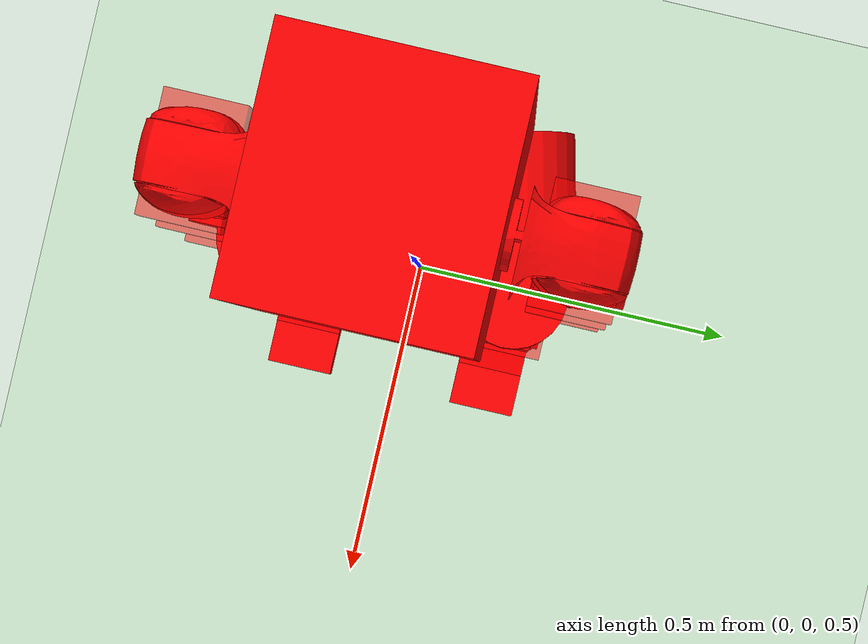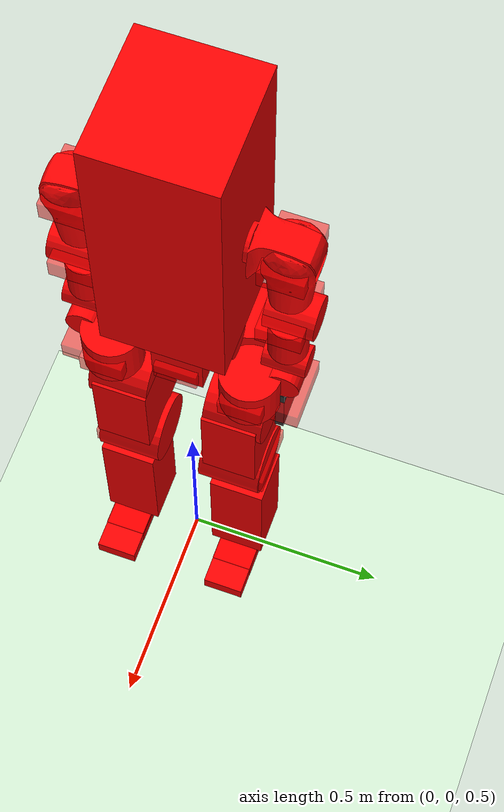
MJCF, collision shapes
<mujoco model="igris_v_1_2">
  <compiler angle="radian" meshdir="meshes/igris_v1_2_parallel/" balanceinertia="false" autolimits="true"/>
  <include file="../common/scene.xml"/>
  <include file="../common/mimic_sites.xml"/>

  <size njmax="8000" nconmax="4000" />
  <option timestep='0.001' iterations="50" tolerance="1e-5" solver="Newton" jacobian="dense" cone="elliptic" noslip_iterations="30" noslip_tolerance="1e-5"/>

  <default>
    <motor ctrllimited="true" />

    <default class="visual">
      <geom group="1" type="mesh" contype="0" conaffinity="0" density="0" rgba="1 1 1 1"/>
    </default>

    <default class="collision">
      <geom group="2" rgba="1.0 0.0 0.0 0.5"/>
    </default>

    <default class="TBM2G_11526_SHF_32">
        <joint damping="8" frictionloss="6" limited="true" armature="0.341155"/>
        <motor ctrlrange="-449.5 449.5"/>
    </default>

    <default class="TBM2G_09408_SHF_25">
        <joint damping="7"  frictionloss="5" limited="true" armature="0.0827421"/>
        <motor ctrlrange="-121.52 121.52" />
    </default>

    <default class="TBM2G_07613_SHF_25">
        <joint damping="7"  frictionloss="4" limited="true" armature="0.0553536"/>
        <motor ctrlrange="-106.02 106.02" />
    </default>

    <default class="TBM2G_07613_SHF_20">
        <joint damping="6"  frictionloss="3" limited="true" armature="0.0553536"/>
        <motor ctrlrange="-106.02 106.02" />
    </default>

    <default class="TBM2G_06013_SHF_20">
        <joint damping="6"  frictionloss="2" limited="true" armature="0.0141267"/>
        <motor ctrlrange="-51.77 51.77" />
    </default>

    <default class="TBM2G_06013_SHF_17">
        <joint damping="5"  frictionloss="1" limited="true" armature="0.0141267"/>
        <motor ctrlrange="-51.77 51.77"/>
    </default>

    <default class="TBM2G_05008_SHF_14">
        <joint damping="4"  frictionloss="0.5" limited="true" armature="0.0075919"/>
        <motor ctrlrange="-22.32 22.32"/>
    </default>

    <default class="TBM2G_05008_CSF_11">
        <joint damping="3"  frictionloss="0.3" limited="true" armature="0.0075919"/>
        <motor ctrlrange="-22.32 22.32"/>
    </default>

    <default class="Passive">
        <joint damping="0.01"  frictionloss="0" limited="false" armature="0"/>
    </default>
  </default>

  <asset>
    <mesh name="2_0_0_Pelvis_Leg" file="2_0_0_Pelvis_Leg.stl" scale="0.001 0.001 0.001"/>
    <mesh name="3_1_Waist_parallel" file="3_1_Waist_parallel_v2.stl" scale="0.001 0.001 0.001"/>
    <mesh name="3_1_1_Bracket_Left_Waist" file="3_1_1_Bracket_Left_Waist.stl" scale="0.001 0.001 0.001"/>
    <mesh name="3_1_2_Rod_Left_Waist" file="3_1_2_Rod_Left_Waist.stl" scale="0.001 0.001 0.001"/>
    <mesh name="3_1_3_Bracket_Right_Waist" file="3_1_3_Bracket_Right_Waist.stl" scale="0.001 0.001 0.001"/>
    <mesh name="3_1_4_Rod_Right_Waist" file="3_1_4_Rod_Right_Waist.stl" scale="0.001 0.001 0.001"/>

    <mesh name="3_2_Link_cross_Torso_Body" file="3_2_Link_cross_Torso_Body.stl" scale="0.001 0.001 0.001"/>
    <mesh name="3_3_Torso" file="3_3_Torso.stl" scale="0.001 0.001 0.001"/>

    <mesh name="1_1_1_Shoulder_Pitch_Left_Arm" file="1_1_1_Shoulder_Pitch_Left_Arm.stl" scale="0.001 0.001 0.001"/>
    <mesh name="1_1_2_Shoulder_Roll_Left_Arm" file="1_1_2_Shoulder_Roll_Left_Arm.stl" scale="0.001 0.001 0.001"/>
    <mesh name="1_1_3_Shoulder_Yaw_Left_Arm" file="1_1_3_Shoulder_Yaw_Left_Arm.stl" scale="0.001 0.001 0.001"/>
    <mesh name="1_1_4_Elbow_Left_Arm" file="1_1_4_Elbow_Left_Arm.stl" scale="0.001 0.001 0.001"/>
    <mesh name="1_1_5_Wrist_Yaw_Left_Arm" file="1_1_5_Wrist_Yaw_Left_Arm.stl" scale="0.001 0.001 0.001"/>
    <mesh name="1_1_6_Wrist_Pitch_Left_Arm" file="1_1_6_Wrist_Pitch_Left_Arm.stl" scale="0.001 0.001 0.001"/>
    <mesh name="1_1_7_Wrist_Roll_Left_Arm" file="1_1_7_Wrist_Roll_Left_Arm.stl" scale="0.001 0.001 0.001"/>

    <mesh name="1_2_1_Shoulder_Pitch_Right_Arm" file="1_2_1_Shoulder_Pitch_Right_Arm.stl" scale="0.001 0.001 0.001"/>
    <mesh name="1_2_2_Shoulder_Roll_Right_Arm" file="1_2_2_Shoulder_Roll_Right_Arm.stl" scale="0.001 0.001 0.001"/>
    <mesh name="1_2_3_Shoulder_Yaw_Right_Arm" file="1_2_3_Shoulder_Yaw_Right_Arm.stl" scale="0.001 0.001 0.001"/>
    <mesh name="1_2_4_Elbow_Right_Arm" file="1_2_4_Elbow_Right_Arm.stl" scale="0.001 0.001 0.001"/>
    <mesh name="1_2_5_Wrist_Yaw_Right_Arm" file="1_2_5_Wrist_Yaw_Right_Arm.stl" scale="0.001 0.001 0.001"/>
    <mesh name="1_2_6_Wrist_Pitch_Right_Arm" file="1_2_6_Wrist_Pitch_Right_Arm.stl" scale="0.001 0.001 0.001"/>
    <mesh name="1_2_7_Wrist_Roll_Right_Arm" file="1_2_7_Wrist_Roll_Right_Arm.stl" scale="0.001 0.001 0.001"/>

    <mesh name="2_1_1_Hip_Roll_Left_Leg" file="2_1_1_Hip_Roll_Left_Leg.stl" scale="0.001 0.001 0.001"/>
    <mesh name="2_1_2_Hip_Yaw_Left_Leg" file="2_1_2_Hip_Yaw_Left_Leg.stl" scale="0.001 0.001 0.001"/>
    <mesh name="2_1_3_Thigh_Left_Leg" file="2_1_3_Thigh_Left_Leg.stl" scale="0.001 0.001 0.001"/>
    <mesh name="2_1_4_Shin_Left_Leg" file="2_1_4_Shin_Left_Leg_v2.stl" scale="0.001 0.001 0.001"/>
    <mesh name="2_1_4_1_Bracket_Out_Left_Ankle" file="2_1_4_1_Bracket_Out_Left_Ankle.stl" scale="0.001 0.001 0.001"/>
    <mesh name="2_1_4_2_Bracket_In_Left_Ankle" file="2_1_4_2_Bracket_In_Left_Ankle.stl" scale="0.001 0.001 0.001"/>
    <mesh name="2_1_5_Shaft_Foot_Left_Leg" file="2_1_5_Shaft_Foot_Left_Leg.stl" scale="0.001 0.001 0.001"/>
    <mesh name="2_1_6_Foot_Left_Leg" file="2_1_6_Foot_Left_Leg_v2.stl" scale="0.001 0.001 0.001"/>
    <mesh name="2_1_6_1_Uni_Out_Left_Foot" file="2_1_6_1_Uni_Out_Left_Foot.stl" scale="0.001 0.001 0.001"/>
    <mesh name="2_1_6_2_Link_Long_Left_Foot" file="2_1_6_2_Link_Long_Left_Foot.stl" scale="0.001 0.001 0.001"/>
    <mesh name="2_1_6_3_Uni_In_Left_Foot" file="2_1_6_3_Uni_In_Left_Foot.stl" scale="0.001 0.001 0.001"/>
    <mesh name="2_1_6_4_Link_Short_Left_Foot" file="2_1_6_4_Link_Short_Left_Foot.stl" scale="0.001 0.001 0.001"/>

    <mesh name="2_2_1_Hip_Roll_Right_Leg" file="2_2_1_Hip_Roll_Right_Leg.stl" scale="0.001 0.001 0.001"/>
    <mesh name="2_2_2_Hip_Yaw_Right_Leg" file="2_2_2_Hip_Yaw_Right_Leg.stl" scale="0.001 0.001 0.001"/>
    <mesh name="2_2_3_Thigh_Right_Leg" file="2_2_3_Thigh_Right_Leg.stl" scale="0.001 0.001 0.001"/>
    <mesh name="2_2_4_Shin_Right_Leg" file="2_2_4_Shin_Right_Leg_v2.stl" scale="0.001 0.001 0.001"/>
    <mesh name="2_2_4_1_Bracket_Out_Right_Ankle" file="2_2_4_1_Bracket_Out_Right_Ankle.stl" scale="0.001 0.001 0.001"/>
    <mesh name="2_2_4_2_Bracket_In_Right_Ankle" file="2_2_4_2_Bracket_In_Right_Ankle.stl" scale="0.001 0.001 0.001"/>
    <mesh name="2_2_5_Shaft_Foot_Right_Leg" file="2_2_5_Shaft_Foot_Right_Leg.stl" scale="0.001 0.001 0.001"/>
    <mesh name="2_2_6_Foot_Right_Leg" file="2_2_6_Foot_Right_Leg_v2.stl" scale="0.001 0.001 0.001"/>
    <mesh name="2_2_6_1_Uni_Out_Right_Foot" file="2_2_6_1_Uni_Out_Right_Foot.stl" scale="0.001 0.001 0.001"/>
    <mesh name="2_2_6_2_Link_Long_Right_Foot" file="2_2_6_2_Link_Long_Right_Foot.stl" scale="0.001 0.001 0.001"/>
    <mesh name="2_2_6_3_Uni_In_Right_Foot" file="2_2_6_3_Uni_In_Right_Foot.stl" scale="0.001 0.001 0.001"/>
    <mesh name="2_2_6_4_Link_Short_Right_Foot" file="2_2_6_4_Link_Short_Right_Foot.stl" scale="0.001 0.001 0.001"/>

    <texture type="skybox" builtin="gradient" width="128" height="128" rgb1="1.0 1.0 1.0" rgb2="0.4 0.4 0.4"/>
    <texture name="grid" type="2d" builtin="checker" width="512" height="512" rgb1="0.9 0.9 0.9" rgb2=".85 .85 .85"/>
    <material name="grid" texture="grid" texrepeat="1 1" texuniform="true" reflectance=".2"/>
  </asset>

  <worldbody>

    <body name="base_link" pos="0 0 1.5">
      <site name = "base_link_site" pos="0 0 0" size="0.01"/>
      <site name="pelvis_mimic" class="mimic"/>
      <inertial pos="-0.18845 -0.00001 -0.05084" mass="17.287" fullinertia="0.2612 0.06098 0.2811 -0.00001 -0.00432 0.00001"/>
      <joint name="root" type="free" limited="false" actuatorfrclimited="false"/>
      <geom class="visual" type="mesh" rgba="0.0706 0.0706 0.0706 1.0" mesh="2_0_0_Pelvis_Leg"/>
      <geom class="collision" type="cylinder" size="0.085 0.07" pos="-0.10 0.126 0.0" quat="0.7020326 -0.0845593 0.7020326 0.0845593"/>
      <geom class="collision" type="cylinder" size="0.085 0.07" pos="-0.10 -0.126 0.0" quat="0.7020326 0.0845593 0.7020326 -0.0845593"/>
      <geom class="collision" type="box" size="0.11 0.06 0.06" pos="-0.05 0.0 0.02"/>
      <body name="2_1_1_Hip_Roll_Left_Leg" pos="-0.04791 0.14153 -0.00520" quat="0.992824 0 0 0.119582">
        <inertial pos="0.07451 -0.00119 -0.00059" mass="3.265" fullinertia="0.00507 0.00646 0.00767 -0.00003 0.00008 -0.00007"/>
        <joint name="Joint_2_1_1_Hip_Roll_Left_Leg" class="TBM2G_11526_SHF_32" pos="0 0 0" axis="1 0 0" range="-0.349066 1.5708"/>
        <geom class="visual" type="mesh" rgba="0.23 0.25 0.23 1" mesh="2_1_1_Hip_Roll_Left_Leg"/>
        <geom class="collision" type="cylinder" size="0.07 0.06" pos="0.0855 0.0 0.0" euler="0.0 0.0 0.0"/>
        <body name="2_1_2_Hip_Yaw_Left_Leg" pos="0.0855 0.0 0.0" quat="0.992824 0 0 -0.119582">
          <site name="left_hip_mimic" class="mimic"/>
          <inertial pos="-0.02491 -0.03014 -0.13229" mass="6.765" fullinertia="0.01696 0.01963 0.0158 -0.00002 -0.00051 -0.00073"/>
          <joint name="Joint_2_1_2_Hip_Yaw_Left_Leg" class="TBM2G_09408_SHF_25" pos="0 0 0" axis="0 0 1" range="-1.5708 1.5708"/>
          <geom class="visual" type="mesh" rgba="0.23 0.25 0.23 1" mesh="2_1_2_Hip_Yaw_Left_Leg"/>
          <geom class="collision" type="cylinder" size="0.085 0.07" pos="-0.025 -0.0245 -0.13638" euler="1.5708 0.0 0.0"/>
          <body name="2_1_3_Thigh_Left_Leg" pos="-0.025 0.0 -0.13638">
            <inertial pos="-0.00066 0.03383 -0.26689" mass="7.305" fullinertia="0.05244 0.0545 0.01786 -0.00017 0.00076 0.00751"/>
            <joint name="Joint_2_1_3_Hip_Pitch_Left_Leg" class="TBM2G_11526_SHF_32" pos="0 0 0" axis="0 1 0" range="-2.0944 0.5236"/>
            <geom class="visual" type="mesh" rgba="0.23 0.25 0.23 1" mesh="2_1_3_Thigh_Left_Leg"/>
            <geom class="collision" type="cylinder" size="0.085 0.075" pos="0.0 -0.035 -0.29" euler="1.5708 0.0 0.0"/>
            <geom class="collision" type="box" size="0.09 0.065 0.12" pos="0.0 -0.03 -0.1"/>
            <body name="2_1_4_Shin_Left_Leg" pos="0.0 0.0 -0.29">
              <site name="left_knee_mimic" class="mimic"/>
              <inertial pos="0.00942 -0.01272 -0.21127" mass="5.128" fullinertia="0.06522 0.06602 0.00746 0.00023 0.00165 -0.00716"/>
              <joint name="Joint_2_1_4_Knee_Left_Leg" class="TBM2G_11526_SHF_32" pos="0 0 0" axis="0 1 0" range="0 2.44346"/>
              <geom class="visual" type="mesh" rgba="0.23 0.25 0.23 1" mesh="2_1_4_Shin_Left_Leg"/>
              <geom class="collision" type="box" size="0.065 0.067 0.17" pos="0.005 -0.02 -0.26"/>
              <body name="2_1_5_Shaft_Foot_Left_Leg" pos="0.02 -0.02 -0.41">
                <inertial pos="-0.01629 0 -0.00941" mass="0.133" fullinertia="0.00004 0.00012 0.00008 0 -0.00004 0"/>
                <joint name="Joint_2_1_5_Ankle_Pitch_Left_Leg" class="TBM2G_06013_SHF_20" pos="0 0 0" axis="0 1 0" limited="true" range="-0.261799388 0.698131701"/>
                <geom class="visual" type="mesh" rgba="0.23 0.25 0.23 1" mesh="2_1_5_Shaft_Foot_Left_Leg"/>
                <body name="2_1_6_Foot_Left_Leg" pos="0 0 0">
                  <site name="left_foot_mimic" class="mimic" pos="0.03 0.005 -0.05"/>
                  <inertial pos="-0.01133 0.00174 -0.04348" mass="0.611" fullinertia="0.00040 0.00356 0.00380 -0.00007 0.00028 0.00001"/>
                  <joint name="Joint_2_1_6_Ankle_Roll_Left_Leg" class="TBM2G_06013_SHF_20" pos="0 0 0" axis="0.8660254038 0 0.5" limited="true" range="-0.523598776 0.523598776"/>
                  <geom class="visual" type="mesh" rgba="0.23 0.25 0.23 1" mesh="2_1_6_Foot_Left_Leg"/>
                  <geom class="collision" name="left_foot" type="box" size="0.14 0.05 0.02" pos="0.03 0.005 -0.05"/>
                </body>
              </body>
            </body>
          </body>
        </body>
      </body>
      <body name="2_2_1_Hip_Roll_Right_Leg" pos="-0.04791 -0.14153 -0.00520" quat="0.992824 0 0 -0.119582">
        <inertial pos="0.07451 0.00119 -0.00059" mass="3.265" fullinertia="0.00507 0.00645 0.00767 0.00003 0.00008 0.00007"/>
        <joint name="Joint_2_2_1_Hip_Roll_Right_Leg" class="TBM2G_11526_SHF_32" pos="0 0 0" axis="1 0 0" range="-1.5708 0.349066"/>
        <geom class="visual" type="mesh" rgba="0.23 0.25 0.23 1" mesh="2_2_1_Hip_Roll_Right_Leg"/>
        <geom class="collision" type="cylinder" size="0.07 0.06" pos="0.0855 0.0 0.0" euler="0.0 0.0 0.0"/>
        <body name="2_2_2_Hip_Yaw_Right_Leg" pos="0.0855 0.0 0.0" quat="0.992824 0 0 0.119582">
          <site name="right_hip_mimic" class="mimic"/>
          <inertial pos="-0.02492 0.03014 -0.13229" mass="6.765" fullinertia="0.01696 0.01964 0.01581 0.00002 -0.00051 0.00073"/>
          <joint name="Joint_2_2_2_Hip_Yaw_Right_Leg" class="TBM2G_09408_SHF_25" pos="0 0 0" axis="0 0 1" range="-1.5708 1.5708"/>
          <geom class="visual" type="mesh" rgba="0.23 0.25 0.23 1" mesh="2_2_2_Hip_Yaw_Right_Leg"/>
          <geom class="collision" type="cylinder" size="0.085 0.07" pos="-0.025 0.0245 -0.13638" euler="1.5708 0.0 0.0"/>
          <body name="2_2_3_Thigh_Right_Leg" pos="-0.025 0.0 -0.13638">
            <inertial pos="-0.00065 0.03383 -0.26688" mass="7.305" fullinertia="0.05245 0.05451 0.01786 0.00017 0.00076 -0.00751"/>
            <joint name="Joint_2_2_3_Hip_Pitch_Right_Leg" class="TBM2G_11526_SHF_32" pos="0 0 0" axis="0 1 0" range="-2.0944 0.5236"/>
            <geom class="visual" type="mesh" rgba="0.23 0.25 0.23 1" mesh="2_2_3_Thigh_Right_Leg"/>
            <geom class="collision" type="cylinder" size="0.085 0.075" pos="0.0 0.035 -0.29" euler="1.5708 0.0 0.0"/>
            <geom class="collision" type="box" size="0.09 0.065 0.12" pos="0.0 0.03 -0.1"/>
            <body name="2_2_4_Shin_Right_Leg" pos="0 0 -0.29">
              <site name="right_knee_mimic" class="mimic"/>
              <inertial pos="0.00937 0.01272 -0.21127" mass="5.128" fullinertia="0.06522 0.06601 0.00746 -0.00022 0.00167 0.00717"/>
              <joint name="Joint_2_2_4_Knee_Right_Leg" class="TBM2G_11526_SHF_32" pos="0 0 0" axis="0 1 0" range="0 2.44346"/>
              <geom class="visual" type="mesh" rgba="0.23 0.25 0.23 1" mesh="2_2_4_Shin_Right_Leg"/>
              <geom class="collision" type="box" size="0.065 0.067 0.17" pos="0.005 0.02 -0.26"/>
              <body name="2_2_5_Shaft_Foot_Right_Leg" pos="0.02 0.02 -0.41">
                <inertial pos="-0.01629 0.00000 -0.00941" mass="0.133" fullinertia="0.00004 0.00012 0.00008 0 -0.00004 0"/>
                <joint name="Joint_2_2_5_Ankle_Pitch_Right_Leg" class="TBM2G_06013_SHF_20" pos="0 0 0" axis="0 1 0" limited="true" range="-0.261799388 0.698131701"/>
                <geom class="visual" type="mesh" rgba="0.23 0.25 0.23 1" mesh="2_2_5_Shaft_Foot_Right_Leg"/>
                <body name="2_2_6_Foot_Right_Leg" pos="0 0 0">
                  <site name="right_foot_mimic" class="mimic" pos="0.03 -0.005 -0.05"/>
                  <inertial pos="-0.01132 -0.00174 -0.04348" mass="0.611" fullinertia="0.00040 0.00355 0.00380 0.00007 0.00028 -0.00001"/>
                  <joint name="Joint_2_2_6_Ankle_Roll_Right_Leg" class="TBM2G_06013_SHF_20" pos="0 0 0" axis="0.8660254038 0 0.5" limited="true" range="-0.523598776 0.523598776"/>
                  <geom class="visual" type="mesh" rgba="0.23 0.25 0.23 1" mesh="2_2_6_Foot_Right_Leg"/>
                  <geom class="collision" name="right_foot" type="box" size="0.14 0.05 0.02" pos="0.03 -0.005 -0.05"/>
                </body>
              </body>
            </body>
          </body>
        </body>
      </body>
      <body name="3_1_Waist_parallel" pos="0 0 0">
        <site name = "waist_yaw_link_site" pos="0 0 0.0848" euler="0.0 3.14159 0.0" size="0.01"/>
        <inertial pos="0.00861 -0.00002 0.13089" mass="6.940" fullinertia="0.06132 0.01452 0.05953 0 -0.00052 0"/>
        <joint name="Joint_3_1_Waist_Yaw" class="TBM2G_09408_SHF_25" pos="0 0 0" axis="0 0 1" range="-1.5708 1.5708"/>
        <geom class="visual" type="mesh" rgba="0.23 0.25 0.23 1" mesh="3_1_Waist_parallel"/>
        <geom class="collision" type="mesh" mesh="3_1_Waist_parallel"/>
        <body name="3_2_Link_cross_Torso_Body" pos="0.01 0 0.1373">
          <inertial pos="-0.00615 0.00000 0.03645" mass="0.486" fullinertia="0.00067 0.00132 0.00083 0 0.00007 0"/>
          <joint name="Joint_3_2_Waist_Pitch" class="TBM2G_09408_SHF_25" pos="0 0 0" axis="0 1 0" range="-0.436332 0.785398"/>
          <geom class="visual" type="mesh" rgba="0.23 0.25 0.23 1" mesh="3_2_Link_cross_Torso_Body"/>
          <body name="3_3_Torso" pos="-0.01 0 0.07">
            <site name="upper_body_mimic" class="mimic" pos="0.0 0.0 0.3"/>
            <site name="head_mimic" class="mimic" pos="0.0 0.0 0.6"/>
            <inertial pos="-0.07803 0.00140 0.38060" mass="22.745" fullinertia="0.56760 0.50790 0.23140 0.00022 0.01508 -0.00218"/>
            <joint name="Joint_3_3_Waist_Roll" class="TBM2G_09408_SHF_25" pos="0 0 0" axis="1 0 0" range="-0.523599 0.523599"/>
            <geom class="visual" type="mesh" rgba="0.2 0.2 0.2 1" mesh="3_3_Torso"/>
            <geom class="collision" type="box" size="0.15 0.14 0.35" pos="-0.02 0.0 0.35"/>
            <body name="1_1_1_Shoulder_Pitch_Left_Arm" pos="-0.02 0.23 0.31">
              <inertial pos="0.00720 0.18178 0.00155" mass="2.089" fullinertia="0.00382 0.00234 0.00355 -0.00018 0.00001 0.00004"/>
              <joint name="Joint_1_1_1_Shoulder_Pitch_Left_Arm" class="TBM2G_07613_SHF_25" pos="0 0 0" axis="0 1 0" range="-3.14159 1.0472"/>
              <geom class="visual" type="mesh" rgba="0.2 0.2 0.2 1" mesh="1_1_1_Shoulder_Pitch_Left_Arm"/>
              <geom class="collision" type="mesh" mesh="1_1_1_Shoulder_Pitch_Left_Arm"/>
              <body name="1_1_2_Shoulder_Roll_Left_Arm" pos="0 0 0">
                <site name="left_shoulder_mimic" class="mimic"/>
                <inertial pos="0.00153 0.00207 -0.04745" mass="0.435" fullinertia="0.00120 0.00163 0.00095 0 -0.00005 -0.00001"/>
                <joint name="Joint_1_1_2_Shoulder_Roll_Left_Arm" class="TBM2G_07613_SHF_20" pos="0 0 0" axis="1 0 0" range="-0.261799 1.5708"/>
                <geom class="visual" type="mesh" rgba="0.2 0.2 0.2 1" mesh="1_1_2_Shoulder_Roll_Left_Arm"/>
                <geom class="collision" type="mesh" mesh="1_1_2_Shoulder_Roll_Left_Arm"/>
                <body name="1_1_3_Shoulder_Yaw_Left_Arm" pos="-0.001 0 -0.0805">
                  <inertial pos="0.00260 0.00558 -0.09321" mass="2.976" fullinertia="0.01220 0.01203 0.00239 -0.00004 0.00039 0.00085"/>
                  <joint name="Joint_1_1_3_Shoulder_Yaw_Left_Arm" class="TBM2G_06013_SHF_17" pos="0 0 0" axis="0 0 1" range="-1.5708 1.5708"/>
                  <geom class="visual" type="mesh" rgba="0.23 0.25 0.23 1" mesh="1_1_3_Shoulder_Yaw_Left_Arm"/>
                  <geom class="collision" type="cylinder" size="0.05 0.056" pos="0.0 0.01 -0.14603" euler="1.5708 0.0 0.0"/>
                  <body name="1_1_4_Elbow_Left_Arm" pos="0.004 0 -0.14603">
                    <site name="left_elbow_mimic" class="mimic"/>
                    <inertial pos="0.00046 0.00970 -0.03842" mass="0.224" fullinertia="0.00043 0.00025 0.00032 0 0 -0.00008"/>
                    <joint name="Joint_1_1_4_Elbow_Left_Arm" class="TBM2G_06013_SHF_17" pos="0 0 0" axis="0 1 0" range="-2.35619 0"/>
                    <geom class="visual" type="mesh" rgba="0.23 0.25 0.23 1" mesh="1_1_4_Elbow_Left_Arm"/>
                    <geom class="collision" type="cylinder" size="0.045 0.058" pos="0 0 -0.102" euler="0.0 0.0 0.0"/>
                    <body name="1_1_5_Wrist_Yaw_Left_Arm" pos="0 0.00125 -0.071">
                      <inertial pos="0.00110 -0.00127 -0.06309" mass="1.555" fullinertia="0.00446 0.00433 0.00094 0 0.00010 -0.00013"/>
                      <joint name="Joint_1_1_5_Wrist_Yaw_Left_Arm" class="TBM2G_05008_SHF_14" pos="0 0 0" axis="0 0 1" range="-1.5708 1.5708"/>
                      <geom class="visual" type="mesh" rgba="0.23 0.25 0.23 1" mesh="1_1_5_Wrist_Yaw_Left_Arm"/>
                      <geom class="collision" type="cylinder" size="0.037 0.05" pos="0.002 0.0 -0.125" euler="1.5708 0.0 0.0"/>
                      <body name="1_1_6_Wrist_Pitch_Left_Arm" pos="-0.0029 0 -0.1966">
                        <inertial pos="-0.00424 -0.00001 0.00050" mass="0.456" fullinertia="0.00017 0.00022 0.00023 0 -0.00001 0"/>
                        <joint name="Joint_1_1_6_Wrist_Pitch_Left_Arm" class="TBM2G_05008_CSF_11" pos="0 0 0" axis="0 1 0" range="-0.523599 0.523599"/>
                        <geom class="visual" type="mesh" rgba="0.23 0.25 0.23 1" mesh="1_1_6_Wrist_Pitch_Left_Arm"/>
                        <geom class="collision" type="cylinder" size="0.042 0.05" pos="0 0 0" euler="0.0 1.5708 0.0"/>
                        <body name="1_1_7_Wrist_Roll_Left_Arm" pos="0 -0.00065 0">
                          <site name="left_hand_mimic" class="mimic" pos="0.0 0.0 -0.10"/>
                          <inertial pos="-0.00074 0 -0.02505" mass="0.215" fullinertia="0.00011 0.00025 0.00019 0 0 0"/>
                          <joint name="Joint_1_1_7_Wrist_Roll_Left_Arm" class="TBM2G_05008_CSF_11" pos="0 0 0" axis="1 0 0" range="-1.5708 1.0472"/>
                          <geom class="visual" type="mesh" rgba="0.23 0.25 0.23 1" mesh="1_1_7_Wrist_Roll_Left_Arm"/>
                          <geom class="visual" type="box" rgba="0.2 0.2 0.2 1" size="0.05 0.01 0.075" pos="0 0 -0.12"/>
                          <geom class="collision" type="box" size="0.05 0.01 0.075" pos="0 0 -0.12"/>
                        </body>
                      </body>
                    </body>
                  </body>
                </body>
              </body>
            </body>
            <body name="1_2_1_Shoulder_Pitch_Right_Arm" pos="-0.02 -0.23 0.31">
              <inertial pos="0.00720 -0.18179 0.00154" mass="2.089" fullinertia="0.00382 0.00234 0.00355 0.00017 0.00001 -0.00004"/>
              <joint name="Joint_1_2_1_Shoulder_Pitch_Right_Arm" class="TBM2G_07613_SHF_25" pos="0 0 0" axis="0 1 0" range="-3.14159 1.0472"/>
              <geom class="visual" type="mesh" rgba="0.2 0.2 0.2 1" mesh="1_2_1_Shoulder_Pitch_Right_Arm"/>
              <geom class="collision" type="mesh" mesh="1_2_1_Shoulder_Pitch_Right_Arm"/>
              <body name="1_2_2_Shoulder_Roll_Right_Arm" pos="0 0 0">
                <site name="right_shoulder_mimic" class="mimic"/>
                <inertial pos="0.00153 -0.00207 -0.04745" mass="0.435" fullinertia="0.00120 0.00163 0.00095 0 -0.00005 0.00001"/>
                <joint name="Joint_1_2_2_Shoulder_Roll_Right_Arm" class="TBM2G_07613_SHF_20" pos="0 0 0" axis="1 0 0" range="-1.5708 0.261799"/>
                <geom class="visual" type="mesh" rgba="0.2 0.2 0.2 1" mesh="1_2_2_Shoulder_Roll_Right_Arm"/>
                <geom class="collision" type="mesh" mesh="1_2_2_Shoulder_Roll_Right_Arm"/>
                <body name="1_2_3_Shoulder_Yaw_Right_Arm" pos="-0.001 0 -0.0805">
                  <inertial pos="0.00191 -0.00693 -0.09564" mass="3.165" fullinertia="0.01289 0.01265 0.00265 0.00001 0.00031 -0.00108"/>
                  <joint name="Joint_1_2_3_Shoulder_Yaw_Right_Arm" class="TBM2G_06013_SHF_17" pos="0 0 0" axis="0 0 1" range="-1.5708 1.5708"/>
                  <geom class="visual" type="mesh" rgba="0.23 0.25 0.23 1" mesh="1_2_3_Shoulder_Yaw_Right_Arm"/>
                  <geom class="collision" type="cylinder" size="0.05 0.056" pos="0 -0.01 -0.14603" euler="1.5708 0.0 0.0"/>
                  <body name="1_2_4_Elbow_Right_Arm" pos="0.004 0 -0.14603">
                    <site name="right_elbow_mimic" class="mimic"/>
                    <inertial pos="-0.00046 -0.00970 -0.03842" mass="0.224" fullinertia="0.00043 0.00025 0.00032 0 0 0.00008"/>
                    <joint name="Joint_1_2_4_Elbow_Right_Arm" class="TBM2G_06013_SHF_17" pos="0 0 0" axis="0 1 0" range="-2.35619 0"/>
                    <geom class="visual" type="mesh" rgba="0.23 0.25 0.23 1" mesh="1_2_4_Elbow_Right_Arm"/>
                    <geom class="collision" type="cylinder" size="0.045 0.058" pos="0 0 -0.102" euler="0.0 0.0 0.0"/>
                    <body name="1_2_5_Wrist_Yaw_Right_Arm" pos="0 -0.00125 -0.071">
                      <inertial pos="-0.00146 0.00129 -0.06344" mass="1.531" fullinertia="0.00444 0.00432 0.00094 0 -0.00008 0.00013"/>
                      <joint name="Joint_1_2_5_Wrist_Yaw_Right_Arm" class="TBM2G_05008_SHF_14" pos="0 0 0" axis="0 0 1" range="-1.5708 1.5708"/>
                      <geom class="visual" type="mesh" rgba="0.23 0.25 0.23 1" mesh="1_2_5_Wrist_Yaw_Right_Arm"/>
                      <geom class="collision" type="cylinder" size="0.037 0.05" pos="0.002 0.0 -0.125" euler="1.5708 0.0 0.0"/>
                      <body name="1_2_6_Wrist_Pitch_Right_Arm" pos="0.0029 0 -0.1966">
                        <inertial pos="-0.00426 0.00002 0.00050" mass="0.457" fullinertia="0.00017 0.00022 0.00023 0 -0.00001 0"/>
                        <joint name="Joint_1_2_6_Wrist_Pitch_Right_Arm" class="TBM2G_05008_CSF_11" pos="0 0 0" axis="0 1 0" range="-0.523599 0.523599"/>
                        <geom class="visual" type="mesh" rgba="0.23 0.25 0.23 1" mesh="1_2_6_Wrist_Pitch_Right_Arm"/>
                        <geom class="collision" type="cylinder" size="0.042 0.05" pos="0 0 0" euler="0.0 1.5708 0.0"/>
                        <body name="1_2_7_Wrist_Roll_Right_Arm" pos="0 0.00065 0">
                          <site name="right_hand_mimic" class="mimic" pos="0.0 0.0 -0.10"/>
                          <inertial pos="-0.00074 0 -0.02505" mass="0.215" fullinertia="0.00011 0.00025 0.00019 0 0 0"/>
                          <joint name="Joint_1_2_7_Wrist_Roll_Right_Arm" class="TBM2G_05008_CSF_11" pos="0 0 0" axis="1 0 0" range="-1.0472 1.5708"/>
                          <geom class="visual" type="mesh" rgba="0.23 0.25 0.23 1" mesh="1_2_7_Wrist_Roll_Right_Arm"/>
                          <geom class="visual" type="box" rgba="0.2 0.2 0.2 1" size="0.05 0.01 0.075" pos="0 0 -0.12"/>
                          <geom class="collision" type="box" size="0.05 0.01 0.075" pos="0 0 -0.12"/>
                        </body>
                      </body>
                    </body>
                  </body>
                </body>
              </body>
            </body>
          </body>
        </body>
      </body>
    </body>
  </worldbody>

  <actuator>
    <motor name="Joint_2_1_1_Hip_Roll_Left_Leg" joint="Joint_2_1_1_Hip_Roll_Left_Leg" class="TBM2G_11526_SHF_32"/>
    <motor name="Joint_2_1_2_Hip_Yaw_Left_Leg" joint="Joint_2_1_2_Hip_Yaw_Left_Leg" class="TBM2G_09408_SHF_25"/>
    <motor name="Joint_2_1_3_Hip_Pitch_Left_Leg" joint="Joint_2_1_3_Hip_Pitch_Left_Leg" class="TBM2G_11526_SHF_32"/>
    <motor name="Joint_2_1_4_Knee_Left_Leg" joint="Joint_2_1_4_Knee_Left_Leg" class="TBM2G_11526_SHF_32"/>
    <motor name="Joint_2_1_5_Ankle_Pitch_Left_Leg" joint="Joint_2_1_5_Ankle_Pitch_Left_Leg" class="TBM2G_11526_SHF_32"/>
    <motor name="Joint_2_1_6_Ankle_Roll_Left_Leg" joint="Joint_2_1_6_Ankle_Roll_Left_Leg" class="TBM2G_11526_SHF_32"/>

    <motor name="Joint_2_2_1_Hip_Roll_Right_Leg" joint="Joint_2_2_1_Hip_Roll_Right_Leg" class="TBM2G_11526_SHF_32"/>
    <motor name="Joint_2_2_2_Hip_Yaw_Right_Leg" joint="Joint_2_2_2_Hip_Yaw_Right_Leg" class="TBM2G_09408_SHF_25"/>
    <motor name="Joint_2_2_3_Hip_Pitch_Right_Leg" joint="Joint_2_2_3_Hip_Pitch_Right_Leg" class="TBM2G_11526_SHF_32"/>
    <motor name="Joint_2_2_4_Knee_Right_Leg" joint="Joint_2_2_4_Knee_Right_Leg" class="TBM2G_11526_SHF_32"/>
    <motor name="Joint_2_2_5_Ankle_Pitch_Right_Leg" joint="Joint_2_2_5_Ankle_Pitch_Right_Leg" class="TBM2G_11526_SHF_32"/>
    <motor name="Joint_2_2_6_Ankle_Roll_Right_Leg" joint="Joint_2_2_6_Ankle_Roll_Right_Leg" class="TBM2G_11526_SHF_32"/>

    <motor name="Joint_3_1_Waist_Yaw" joint="Joint_3_1_Waist_Yaw" class="TBM2G_09408_SHF_25"/>
    <motor name="Joint_3_2_Waist_Pitch" joint="Joint_3_2_Waist_Pitch" class="TBM2G_09408_SHF_25"/>
    <motor name="Joint_3_3_Waist_Roll" joint="Joint_3_3_Waist_Roll" class="TBM2G_09408_SHF_25"/>

    <motor name="Joint_1_1_1_Shoulder_Pitch_Left_Arm" joint="Joint_1_1_1_Shoulder_Pitch_Left_Arm" class="TBM2G_07613_SHF_25"/>
    <motor name="Joint_1_1_2_Shoulder_Roll_Left_Arm" joint="Joint_1_1_2_Shoulder_Roll_Left_Arm" class="TBM2G_07613_SHF_20"/>
    <motor name="Joint_1_1_3_Shoulder_Yaw_Left_Arm" joint="Joint_1_1_3_Shoulder_Yaw_Left_Arm" class="TBM2G_06013_SHF_17"/>
    <motor name="Joint_1_1_4_Elbow_Left_Arm" joint="Joint_1_1_4_Elbow_Left_Arm" class="TBM2G_06013_SHF_17"/>
    <motor name="Joint_1_1_5_Wrist_Yaw_Left_Arm" joint="Joint_1_1_5_Wrist_Yaw_Left_Arm" class="TBM2G_05008_SHF_14"/>
    <motor name="Joint_1_1_6_Wrist_Pitch_Left_Arm" joint="Joint_1_1_6_Wrist_Pitch_Left_Arm" class="TBM2G_05008_CSF_11"/>
    <motor name="Joint_1_1_7_Wrist_Roll_Left_Arm" joint="Joint_1_1_7_Wrist_Roll_Left_Arm" class="TBM2G_05008_CSF_11"/>

    <motor name="Joint_1_2_1_Shoulder_Pitch_Right_Arm" joint="Joint_1_2_1_Shoulder_Pitch_Right_Arm" class="TBM2G_07613_SHF_25"/>
    <motor name="Joint_1_2_2_Shoulder_Roll_Right_Arm" joint="Joint_1_2_2_Shoulder_Roll_Right_Arm" class="TBM2G_07613_SHF_20"/>
    <motor name="Joint_1_2_3_Shoulder_Yaw_Right_Arm" joint="Joint_1_2_3_Shoulder_Yaw_Right_Arm" class="TBM2G_06013_SHF_17"/>
    <motor name="Joint_1_2_4_Elbow_Right_Arm" joint="Joint_1_2_4_Elbow_Right_Arm" class="TBM2G_06013_SHF_17"/>
    <motor name="Joint_1_2_5_Wrist_Yaw_Right_Arm" joint="Joint_1_2_5_Wrist_Yaw_Right_Arm" class="TBM2G_05008_SHF_14"/>
    <motor name="Joint_1_2_6_Wrist_Pitch_Right_Arm" joint="Joint_1_2_6_Wrist_Pitch_Right_Arm" class="TBM2G_05008_CSF_11"/>
    <motor name="Joint_1_2_7_Wrist_Roll_Right_Arm" joint="Joint_1_2_7_Wrist_Roll_Right_Arm" class="TBM2G_05008_CSF_11"/>
  </actuator>

  <contact>
    <exclude body1="3_1_Waist_parallel" body2="3_3_Torso"/>
    <exclude body1="2_2_6_Foot_Right_Leg" body2="2_2_4_Shin_Right_Leg"/>
    <exclude body1="2_1_6_Foot_Left_Leg" body2="2_1_4_Shin_Left_Leg"/>
    <exclude body1="1_1_7_Wrist_Roll_Left_Arm" body2="1_1_5_Wrist_Yaw_Left_Arm"/>
    <exclude body1="1_2_7_Wrist_Roll_Right_Arm" body2="1_2_5_Wrist_Yaw_Right_Arm"/>
    <exclude body1="base_link" body2="2_1_2_Hip_Yaw_Left_Leg"/>
    <exclude body1="base_link" body2="2_2_2_Hip_Yaw_Right_Leg"/>
  </contact>

  <sensor>
    <gyro site="waist_yaw_link_site" name="imu-pelvis-angular-velocity" cutoff="34.9" noise="0.0005"/>
    <accelerometer site="waist_yaw_link_site" name="imu-pelvis-linear-acceleration" cutoff="157" noise="0.01"/>
    <framequat name="imu-pelvis-quat" objtype="site" objname="waist_yaw_link_site"/>
  </sensor>
</mujoco>

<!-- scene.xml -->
git s<mujoco model="scene">

  <visual>
    <headlight diffuse="0.6 0.6 0.6" ambient="0.3 0.3 0.3" specular="0 0 0"/>
    <rgba haze="0.15 0.25 0.35 1"/>
    <global azimuth="-130" elevation="-20"/>
  </visual>

   <asset>
       <texture builtin="gradient" height="100" rgb1=".4 .5 .6" rgb2="0 0 0" type="skybox" width="100"/>
       <texture name="texplane" type="2d" builtin="checker" rgb1=".2 .3 .4" rgb2=".1 0.15 0.2" width="100" height="100"/>
       <material name="MatPlane" reflectance="0.5" texture="texplane" texrepeat="1 1" texuniform="true"/>
   </asset>

    <worldbody>
        <geom name="floor" friction="1 .1 .1" pos="0 0 0" size="0 0 0.125" type="plane" material="MatPlane" condim="3" conaffinity="1" contype="1" group="2" rgba="0.8 0.9 0.8 1"/>
        <light cutoff="1000" diffuse="1 1 1" dir="-0 0 -1.3" directional="true" exponent="1" pos="0 0 1.3" specular=".1 .1 .1" castshadow="false"/>
    </worldbody>
</mujoco>

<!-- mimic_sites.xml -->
<mujoco model="mimic_sites">
    <default>
    <default class="mimic">
        <site group="1" type="box" size="0.075 0.05 0.025" rgba="1.0 0.0 0.0 0.5"/>
    </default>
    </default>
</mujoco>
